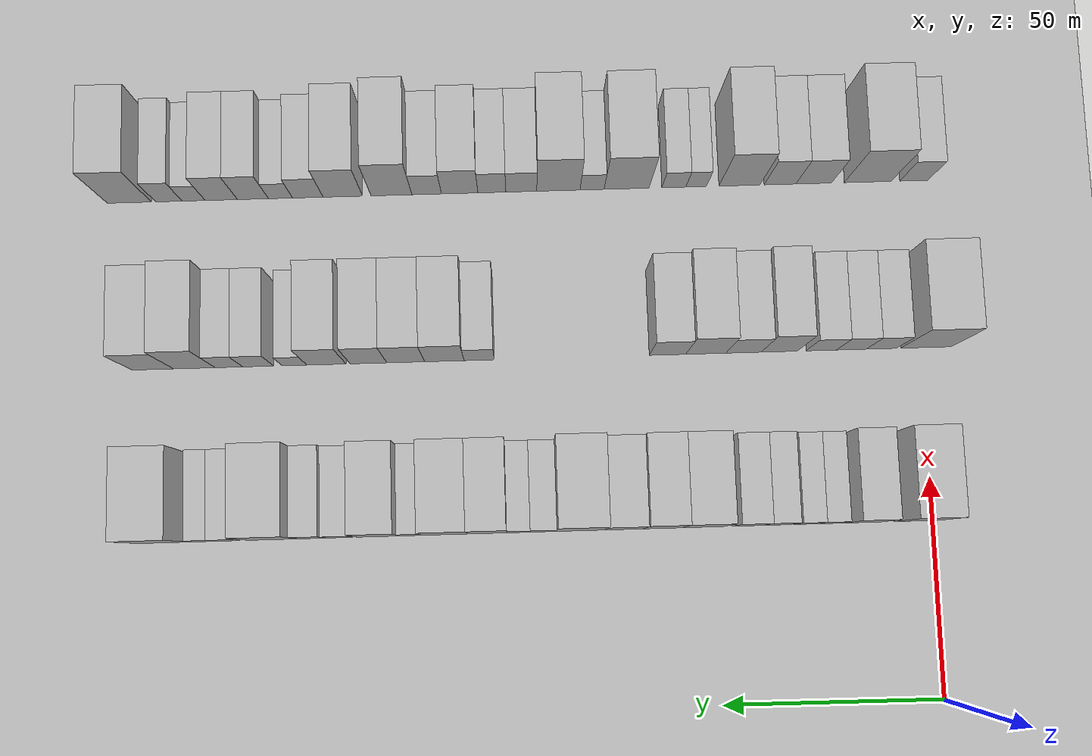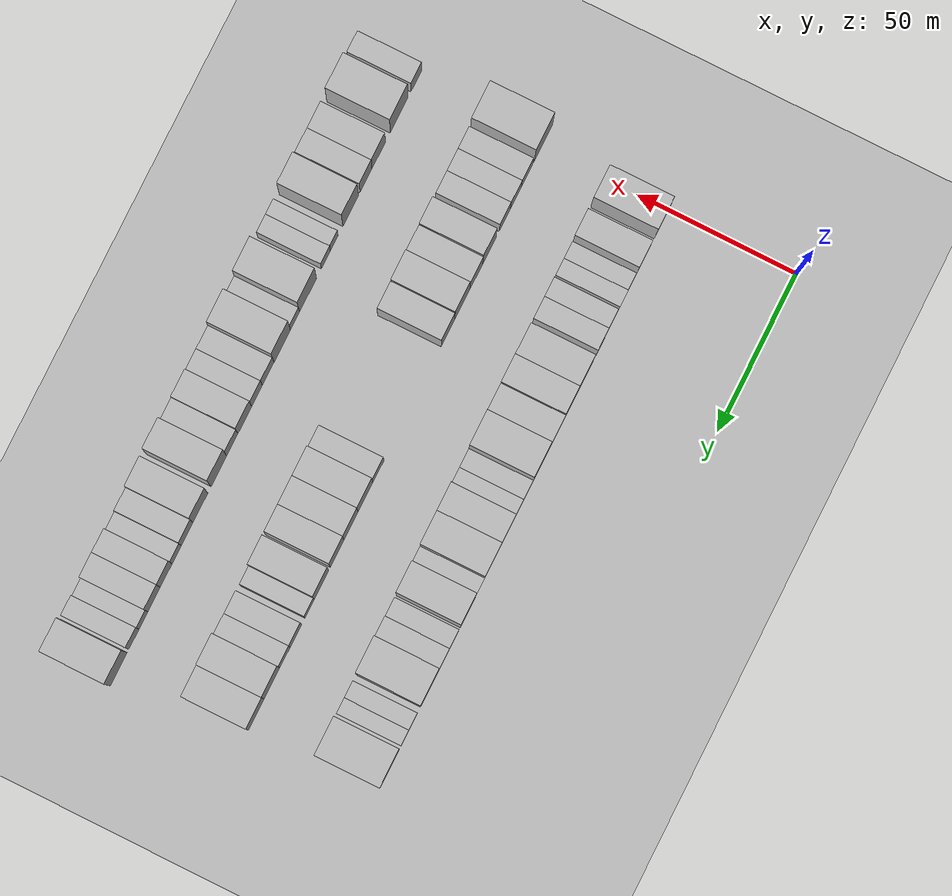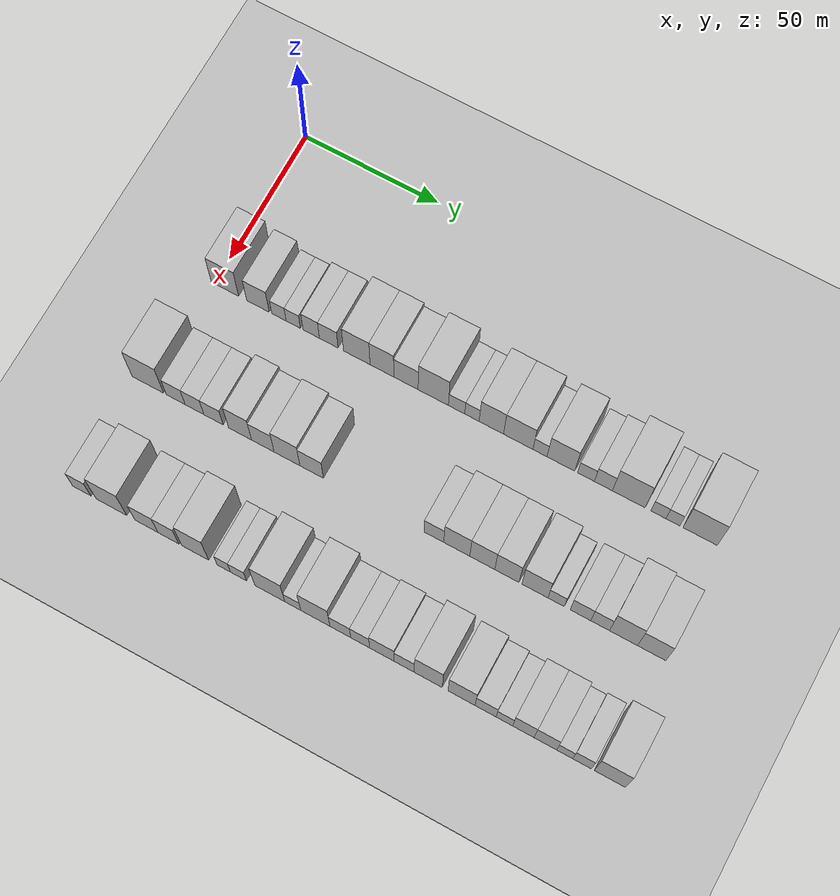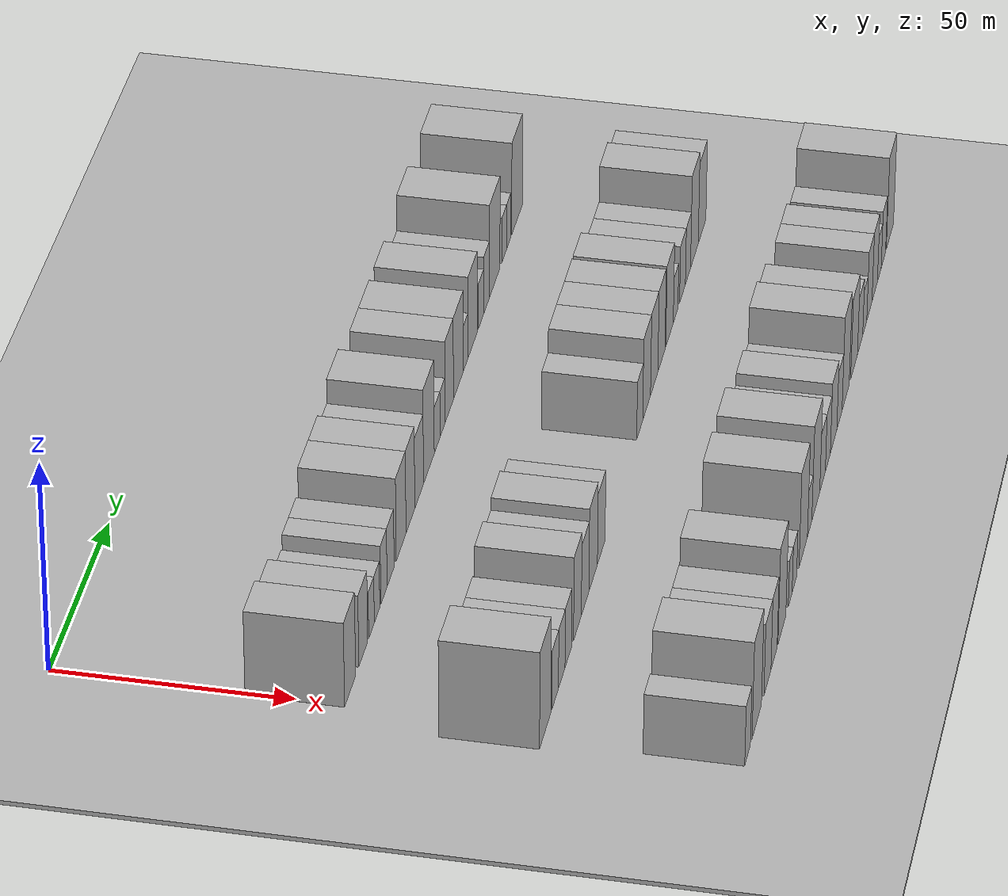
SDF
<sdf version="1.6">
 <world name="default">
  <include><name>ground_plane_1</name><uri>model://HANNAS_ground_plane</uri></include>
  <include>
   <name>ground_plane_2</name>
   <uri>model://HANNAS_ground_plane</uri>
   <pose>100 0 0  0 0 0</pose>
  </include>
  <model name="building_41">
   <static>1</static>
   <pose>50.0000 3.9553 0 0.000000 0.000000 0.000000</pose>
   <link name="link">
    <pose>0 0 10.50 0 0 0</pose>
    <collision name="collision"><geometry><box><size>20.0000 10.2650 21.0000</size></box></geometry></collision>
    <visual name="visual">
     <cast_shadows>0</cast_shadows>
     <geometry><box><size>20.0000 10.2650 21.0000</size></box></geometry>
     <material>
      <script>
       <uri>model://HANNAS_wall/materials/scripts</uri>
       <uri>model://HANNAS_wall/materials/textures</uri>
       <name>vrc/HANNAS_wall</name>
      </script>
     </material>
    </visual>
   </link>
  </model>
  <model name="building_42">
   <static>1</static>
   <pose>50.0000 16.2901 0 0.000000 0.000000 0.000000</pose>
   <link name="link">
    <pose>0 0 9.00 0 0 0</pose>
    <collision name="collision"><geometry><box><size>20.0000 8.4046 18.0000</size></box></geometry></collision>
    <visual name="visual">
     <cast_shadows>0</cast_shadows>
     <geometry><box><size>20.0000 8.4046 18.0000</size></box></geometry>
     <material>
      <script>
       <uri>model://HANNAS_wall/materials/scripts</uri>
       <uri>model://HANNAS_wall/materials/textures</uri>
       <name>vrc/HANNAS_wall</name>
      </script>
     </material>
    </visual>
   </link>
  </model>
  <model name="building_43">
   <static>1</static>
   <pose>50.0000 24.1484 0 0.000000 0.000000 0.000000</pose>
   <link name="link">
    <pose>0 0 6.00 0 0 0</pose>
    <collision name="collision"><geometry><box><size>20.0000 5.3120 12.0000</size></box></geometry></collision>
    <visual name="visual">
     <cast_shadows>0</cast_shadows>
     <geometry><box><size>20.0000 5.3120 12.0000</size></box></geometry>
     <material>
      <script>
       <uri>model://HANNAS_wall/materials/scripts</uri>
       <uri>model://HANNAS_wall/materials/textures</uri>
       <name>vrc/HANNAS_wall</name>
      </script>
     </material>
    </visual>
   </link>
  </model>
  <model name="building_44">
   <static>1</static>
   <pose>50.0000 29.4460 0 0.000000 0.000000 0.000000</pose>
   <link name="link">
    <pose>0 0 6.00 0 0 0</pose>
    <collision name="collision"><geometry><box><size>20.0000 5.2832 12.0000</size></box></geometry></collision>
    <visual name="visual">
     <cast_shadows>0</cast_shadows>
     <geometry><box><size>20.0000 5.2832 12.0000</size></box></geometry>
     <material>
      <script>
       <uri>model://HANNAS_wall/materials/scripts</uri>
       <uri>model://HANNAS_wall/materials/textures</uri>
       <name>vrc/HANNAS_wall</name>
      </script>
     </material>
    </visual>
   </link>
  </model>
  <model name="building_45">
   <static>1</static>
   <pose>50.0000 36.1066 0 0.000000 0.000000 0.000000</pose>
   <link name="link">
    <pose>0 0 7.50 0 0 0</pose>
    <collision name="collision"><geometry><box><size>20.0000 6.0381 15.0000</size></box></geometry></collision>
    <visual name="visual">
     <cast_shadows>0</cast_shadows>
     <geometry><box><size>20.0000 6.0381 15.0000</size></box></geometry>
     <material>
      <script>
       <uri>model://HANNAS_wall/materials/scripts</uri>
       <uri>model://HANNAS_wall/materials/textures</uri>
       <name>vrc/HANNAS_wall</name>
      </script>
     </material>
    </visual>
   </link>
  </model>
  <model name="building_46">
   <static>1</static>
   <pose>50.0000 42.5712 0 0.000000 0.000000 0.000000</pose>
   <link name="link">
    <pose>0 0 7.50 0 0 0</pose>
    <collision name="collision"><geometry><box><size>20.0000 6.8910 15.0000</size></box></geometry></collision>
    <visual name="visual">
     <cast_shadows>0</cast_shadows>
     <geometry><box><size>20.0000 6.8910 15.0000</size></box></geometry>
     <material>
      <script>
       <uri>model://HANNAS_wall/materials/scripts</uri>
       <uri>model://HANNAS_wall/materials/textures</uri>
       <name>vrc/HANNAS_wall</name>
      </script>
     </material>
    </visual>
   </link>
  </model>
  <model name="building_47">
   <static>1</static>
   <pose>50.0000 52.8749 0 0.000000 0.000000 0.000000</pose>
   <link name="link">
    <pose>0 0 10.50 0 0 0</pose>
    <collision name="collision"><geometry><box><size>20.0000 9.7164 21.0000</size></box></geometry></collision>
    <visual name="visual">
     <cast_shadows>0</cast_shadows>
     <geometry><box><size>20.0000 9.7164 21.0000</size></box></geometry>
     <material>
      <script>
       <uri>model://HANNAS_wall/materials/scripts</uri>
       <uri>model://HANNAS_wall/materials/textures</uri>
       <name>vrc/HANNAS_wall</name>
      </script>
     </material>
    </visual>
   </link>
  </model>
  <model name="building_48">
   <static>1</static>
   <pose>50.0000 62.1032 0 0.000000 0.000000 0.000000</pose>
   <link name="link">
    <pose>0 0 10.50 0 0 0</pose>
    <collision name="collision"><geometry><box><size>20.0000 8.7401 21.0000</size></box></geometry></collision>
    <visual name="visual">
     <cast_shadows>0</cast_shadows>
     <geometry><box><size>20.0000 8.7401 21.0000</size></box></geometry>
     <material>
      <script>
       <uri>model://HANNAS_wall/materials/scripts</uri>
       <uri>model://HANNAS_wall/materials/textures</uri>
       <name>vrc/HANNAS_wall</name>
      </script>
     </material>
    </visual>
   </link>
  </model>
  <model name="building_49">
   <static>1</static>
   <pose>50.0000 70.8600 0 0.000000 0.000000 0.000000</pose>
   <link name="link">
    <pose>0 0 9.00 0 0 0</pose>
    <collision name="collision"><geometry><box><size>20.0000 8.7737 18.0000</size></box></geometry></collision>
    <visual name="visual">
     <cast_shadows>0</cast_shadows>
     <geometry><box><size>20.0000 8.7737 18.0000</size></box></geometry>
     <material>
      <script>
       <uri>model://HANNAS_wall/materials/scripts</uri>
       <uri>model://HANNAS_wall/materials/textures</uri>
       <name>vrc/HANNAS_wall</name>
      </script>
     </material>
    </visual>
   </link>
  </model>
  <model name="building_50">
   <static>1</static>
   <pose>50.0000 80.7420 0 0.000000 0.000000 0.000000</pose>
   <link name="link">
    <pose>0 0 12.00 0 0 0</pose>
    <collision name="collision"><geometry><box><size>20.0000 10.9903 24.0000</size></box></geometry></collision>
    <visual name="visual">
     <cast_shadows>0</cast_shadows>
     <geometry><box><size>20.0000 10.9903 24.0000</size></box></geometry>
     <material>
      <script>
       <uri>model://HANNAS_wall/materials/scripts</uri>
       <uri>model://HANNAS_wall/materials/textures</uri>
       <name>vrc/HANNAS_wall</name>
      </script>
     </material>
    </visual>
   </link>
  </model>
  <model name="building_51">
   <static>1</static>
   <pose>50.0000 89.1865 0 0.000000 0.000000 0.000000</pose>
   <link name="link">
    <pose>0 0 6.00 0 0 0</pose>
    <collision name="collision"><geometry><box><size>20.0000 5.8988 12.0000</size></box></geometry></collision>
    <visual name="visual">
     <cast_shadows>0</cast_shadows>
     <geometry><box><size>20.0000 5.8988 12.0000</size></box></geometry>
     <material>
      <script>
       <uri>model://HANNAS_wall/materials/scripts</uri>
       <uri>model://HANNAS_wall/materials/textures</uri>
       <name>vrc/HANNAS_wall</name>
      </script>
     </material>
    </visual>
   </link>
  </model>
  <model name="building_52">
   <static>1</static>
   <pose>50.0000 94.7149 0 0.000000 0.000000 0.000000</pose>
   <link name="link">
    <pose>0 0 6.00 0 0 0</pose>
    <collision name="collision"><geometry><box><size>20.0000 5.1579 12.0000</size></box></geometry></collision>
    <visual name="visual">
     <cast_shadows>0</cast_shadows>
     <geometry><box><size>20.0000 5.1579 12.0000</size></box></geometry>
     <material>
      <script>
       <uri>model://HANNAS_wall/materials/scripts</uri>
       <uri>model://HANNAS_wall/materials/textures</uri>
       <name>vrc/HANNAS_wall</name>
      </script>
     </material>
    </visual>
   </link>
  </model>
  <model name="building_53">
   <static>1</static>
   <pose>50.0000 101.6818 0 0.000000 0.000000 0.000000</pose>
   <link name="link">
    <pose>0 0 10.50 0 0 0</pose>
    <collision name="collision"><geometry><box><size>20.0000 8.7760 21.0000</size></box></geometry></collision>
    <visual name="visual">
     <cast_shadows>0</cast_shadows>
     <geometry><box><size>20.0000 8.7760 21.0000</size></box></geometry>
     <material>
      <script>
       <uri>model://HANNAS_wall/materials/scripts</uri>
       <uri>model://HANNAS_wall/materials/textures</uri>
       <name>vrc/HANNAS_wall</name>
      </script>
     </material>
    </visual>
   </link>
  </model>
  <model name="building_54">
   <static>1</static>
   <pose>50.0000 111.2973 0 0.000000 0.000000 0.000000</pose>
   <link name="link">
    <pose>0 0 10.50 0 0 0</pose>
    <collision name="collision"><geometry><box><size>20.0000 10.4549 21.0000</size></box></geometry></collision>
    <visual name="visual">
     <cast_shadows>0</cast_shadows>
     <geometry><box><size>20.0000 10.4549 21.0000</size></box></geometry>
     <material>
      <script>
       <uri>model://HANNAS_wall/materials/scripts</uri>
       <uri>model://HANNAS_wall/materials/textures</uri>
       <name>vrc/HANNAS_wall</name>
      </script>
     </material>
    </visual>
   </link>
  </model>
  <model name="building_55">
   <static>1</static>
   <pose>50.0000 119.0371 0 0.000000 0.000000 0.000000</pose>
   <link name="link">
    <pose>0 0 6.00 0 0 0</pose>
    <collision name="collision"><geometry><box><size>20.0000 5.0247 12.0000</size></box></geometry></collision>
    <visual name="visual">
     <cast_shadows>0</cast_shadows>
     <geometry><box><size>20.0000 5.0247 12.0000</size></box></geometry>
     <material>
      <script>
       <uri>model://HANNAS_wall/materials/scripts</uri>
       <uri>model://HANNAS_wall/materials/textures</uri>
       <name>vrc/HANNAS_wall</name>
      </script>
     </material>
    </visual>
   </link>
  </model>
  <model name="building_56">
   <static>1</static>
   <pose>50.0000 126.4788 0 0.000000 0.000000 0.000000</pose>
   <link name="link">
    <pose>0 0 10.50 0 0 0</pose>
    <collision name="collision"><geometry><box><size>20.0000 9.8587 21.0000</size></box></geometry></collision>
    <visual name="visual">
     <cast_shadows>0</cast_shadows>
     <geometry><box><size>20.0000 9.8587 21.0000</size></box></geometry>
     <material>
      <script>
       <uri>model://HANNAS_wall/materials/scripts</uri>
       <uri>model://HANNAS_wall/materials/textures</uri>
       <name>vrc/HANNAS_wall</name>
      </script>
     </material>
    </visual>
   </link>
  </model>
  <model name="building_57">
   <static>1</static>
   <pose>50.0000 135.3654 0 0.000000 0.000000 0.000000</pose>
   <link name="link">
    <pose>0 0 6.00 0 0 0</pose>
    <collision name="collision"><geometry><box><size>20.0000 5.9146 12.0000</size></box></geometry></collision>
    <visual name="visual">
     <cast_shadows>0</cast_shadows>
     <geometry><box><size>20.0000 5.9146 12.0000</size></box></geometry>
     <material>
      <script>
       <uri>model://HANNAS_wall/materials/scripts</uri>
       <uri>model://HANNAS_wall/materials/textures</uri>
       <name>vrc/HANNAS_wall</name>
      </script>
     </material>
    </visual>
   </link>
  </model>
  <model name="building_58">
   <static>1</static>
   <pose>50.0000 141.5063 0 0.000000 0.000000 0.000000</pose>
   <link name="link">
    <pose>0 0 7.50 0 0 0</pose>
    <collision name="collision"><geometry><box><size>20.0000 6.3672 15.0000</size></box></geometry></collision>
    <visual name="visual">
     <cast_shadows>0</cast_shadows>
     <geometry><box><size>20.0000 6.3672 15.0000</size></box></geometry>
     <material>
      <script>
       <uri>model://HANNAS_wall/materials/scripts</uri>
       <uri>model://HANNAS_wall/materials/textures</uri>
       <name>vrc/HANNAS_wall</name>
      </script>
     </material>
    </visual>
   </link>
  </model>
  <model name="building_59">
   <static>1</static>
   <pose>50.0000 150.4168 0 0.000000 0.000000 0.000000</pose>
   <link name="link">
    <pose>0 0 12.00 0 0 0</pose>
    <collision name="collision"><geometry><box><size>20.0000 11.4538 24.0000</size></box></geometry></collision>
    <visual name="visual">
     <cast_shadows>0</cast_shadows>
     <geometry><box><size>20.0000 11.4538 24.0000</size></box></geometry>
     <material>
      <script>
       <uri>model://HANNAS_wall/materials/scripts</uri>
       <uri>model://HANNAS_wall/materials/textures</uri>
       <name>vrc/HANNAS_wall</name>
      </script>
     </material>
    </visual>
   </link>
  </model>
  <model name="building_60">
   <static>1</static>
   <pose>50.0000 160.7680 0 0.000000 0.000000 0.000000</pose>
   <link name="link">
    <pose>0 0 6.00 0 0 0</pose>
    <collision name="collision"><geometry><box><size>20.0000 5.2487 12.0000</size></box></geometry></collision>
    <visual name="visual">
     <cast_shadows>0</cast_shadows>
     <geometry><box><size>20.0000 5.2487 12.0000</size></box></geometry>
     <material>
      <script>
       <uri>model://HANNAS_wall/materials/scripts</uri>
       <uri>model://HANNAS_wall/materials/textures</uri>
       <name>vrc/HANNAS_wall</name>
      </script>
     </material>
    </visual>
   </link>
  </model>
  <model name="building_61">
   <static>1</static>
   <pose>50.0000 165.8168 0 0.000000 0.000000 0.000000</pose>
   <link name="link">
    <pose>0 0 6.00 0 0 0</pose>
    <collision name="collision"><geometry><box><size>20.0000 4.8489 12.0000</size></box></geometry></collision>
    <visual name="visual">
     <cast_shadows>0</cast_shadows>
     <geometry><box><size>20.0000 4.8489 12.0000</size></box></geometry>
     <material>
      <script>
       <uri>model://HANNAS_wall/materials/scripts</uri>
       <uri>model://HANNAS_wall/materials/textures</uri>
       <name>vrc/HANNAS_wall</name>
      </script>
     </material>
    </visual>
   </link>
  </model>
  <model name="building_62">
   <static>1</static>
   <pose>50.0000 175.2082 0 0.000000 0.000000 0.000000</pose>
   <link name="link">
    <pose>0 0 12.00 0 0 0</pose>
    <collision name="collision"><geometry><box><size>20.0000 11.9339 24.0000</size></box></geometry></collision>
    <visual name="visual">
     <cast_shadows>0</cast_shadows>
     <geometry><box><size>20.0000 11.9339 24.0000</size></box></geometry>
     <material>
      <script>
       <uri>model://HANNAS_wall/materials/scripts</uri>
       <uri>model://HANNAS_wall/materials/textures</uri>
       <name>vrc/HANNAS_wall</name>
      </script>
     </material>
    </visual>
   </link>
  </model>
  <model name="building_129">
   <static>1</static>
   <pose>90.0000 -1.0856 0 0.000000 0.000000 0.000000</pose>
   <link name="link">
    <pose>0 0 12.00 0 0 0</pose>
    <collision name="collision"><geometry><box><size>20.0000 11.7005 24.0000</size></box></geometry></collision>
    <visual name="visual">
     <cast_shadows>0</cast_shadows>
     <geometry><box><size>20.0000 11.7005 24.0000</size></box></geometry>
     <material>
      <script>
       <uri>model://HANNAS_wall/materials/scripts</uri>
       <uri>model://HANNAS_wall/materials/textures</uri>
       <name>vrc/HANNAS_wall</name>
      </script>
     </material>
    </visual>
   </link>
  </model>
  <model name="building_130">
   <static>1</static>
   <pose>90.0000 9.2709 0 0.000000 0.000000 0.000000</pose>
   <link name="link">
    <pose>0 0 7.50 0 0 0</pose>
    <collision name="collision"><geometry><box><size>20.0000 7.0125 15.0000</size></box></geometry></collision>
    <visual name="visual">
     <cast_shadows>0</cast_shadows>
     <geometry><box><size>20.0000 7.0125 15.0000</size></box></geometry>
     <material>
      <script>
       <uri>model://HANNAS_wall/materials/scripts</uri>
       <uri>model://HANNAS_wall/materials/textures</uri>
       <name>vrc/HANNAS_wall</name>
      </script>
     </material>
    </visual>
   </link>
  </model>
  <model name="building_131">
   <static>1</static>
   <pose>90.0000 16.2237 0 0.000000 0.000000 0.000000</pose>
   <link name="link">
    <pose>0 0 7.50 0 0 0</pose>
    <collision name="collision"><geometry><box><size>20.0000 6.8932 15.0000</size></box></geometry></collision>
    <visual name="visual">
     <cast_shadows>0</cast_shadows>
     <geometry><box><size>20.0000 6.8932 15.0000</size></box></geometry>
     <material>
      <script>
       <uri>model://HANNAS_wall/materials/scripts</uri>
       <uri>model://HANNAS_wall/materials/textures</uri>
       <name>vrc/HANNAS_wall</name>
      </script>
     </material>
    </visual>
   </link>
  </model>
  <model name="building_132">
   <static>1</static>
   <pose>90.0000 23.2093 0 0.000000 0.000000 0.000000</pose>
   <link name="link">
    <pose>0 0 7.50 0 0 0</pose>
    <collision name="collision"><geometry><box><size>20.0000 7.0781 15.0000</size></box></geometry></collision>
    <visual name="visual">
     <cast_shadows>0</cast_shadows>
     <geometry><box><size>20.0000 7.0781 15.0000</size></box></geometry>
     <material>
      <script>
       <uri>model://HANNAS_wall/materials/scripts</uri>
       <uri>model://HANNAS_wall/materials/textures</uri>
       <name>vrc/HANNAS_wall</name>
      </script>
     </material>
    </visual>
   </link>
  </model>
  <model name="building_133">
   <static>1</static>
   <pose>90.0000 32.9680 0 0.000000 0.000000 0.000000</pose>
   <link name="link">
    <pose>0 0 10.50 0 0 0</pose>
    <collision name="collision"><geometry><box><size>20.0000 8.4394 21.0000</size></box></geometry></collision>
    <visual name="visual">
     <cast_shadows>0</cast_shadows>
     <geometry><box><size>20.0000 8.4394 21.0000</size></box></geometry>
     <material>
      <script>
       <uri>model://HANNAS_wall/materials/scripts</uri>
       <uri>model://HANNAS_wall/materials/textures</uri>
       <name>vrc/HANNAS_wall</name>
      </script>
     </material>
    </visual>
   </link>
  </model>
  <model name="building_134">
   <static>1</static>
   <pose>90.0000 41.2858 0 0.000000 0.000000 0.000000</pose>
   <link name="link">
    <pose>0 0 9.00 0 0 0</pose>
    <collision name="collision"><geometry><box><size>20.0000 8.1962 18.0000</size></box></geometry></collision>
    <visual name="visual">
     <cast_shadows>0</cast_shadows>
     <geometry><box><size>20.0000 8.1962 18.0000</size></box></geometry>
     <material>
      <script>
       <uri>model://HANNAS_wall/materials/scripts</uri>
       <uri>model://HANNAS_wall/materials/textures</uri>
       <name>vrc/HANNAS_wall</name>
      </script>
     </material>
    </visual>
   </link>
  </model>
  <model name="building_135">
   <static>1</static>
   <pose>90.0000 50.0693 0 0.000000 0.000000 0.000000</pose>
   <link name="link">
    <pose>0 0 10.50 0 0 0</pose>
    <collision name="collision"><geometry><box><size>20.0000 9.3708 21.0000</size></box></geometry></collision>
    <visual name="visual">
     <cast_shadows>0</cast_shadows>
     <geometry><box><size>20.0000 9.3708 21.0000</size></box></geometry>
     <material>
      <script>
       <uri>model://HANNAS_wall/materials/scripts</uri>
       <uri>model://HANNAS_wall/materials/textures</uri>
       <name>vrc/HANNAS_wall</name>
      </script>
     </material>
    </visual>
   </link>
  </model>
  <model name="building_136">
   <static>1</static>
   <pose>90.0000 59.0007 0 0.000000 0.000000 0.000000</pose>
   <link name="link">
    <pose>0 0 9.00 0 0 0</pose>
    <collision name="collision"><geometry><box><size>20.0000 8.4918 18.0000</size></box></geometry></collision>
    <visual name="visual">
     <cast_shadows>0</cast_shadows>
     <geometry><box><size>20.0000 8.4918 18.0000</size></box></geometry>
     <material>
      <script>
       <uri>model://HANNAS_wall/materials/scripts</uri>
       <uri>model://HANNAS_wall/materials/textures</uri>
       <name>vrc/HANNAS_wall</name>
      </script>
     </material>
    </visual>
   </link>
  </model>
  <model name="building_137">
   <static>1</static>
   <pose>90.0000 102.7180 0 0.000000 0.000000 0.000000</pose>
   <link name="link">
    <pose>0 0 7.50 0 0 0</pose>
    <collision name="collision"><geometry><box><size>20.0000 6.9810 15.0000</size></box></geometry></collision>
    <visual name="visual">
     <cast_shadows>0</cast_shadows>
     <geometry><box><size>20.0000 6.9810 15.0000</size></box></geometry>
     <material>
      <script>
       <uri>model://HANNAS_wall/materials/scripts</uri>
       <uri>model://HANNAS_wall/materials/textures</uri>
       <name>vrc/HANNAS_wall</name>
      </script>
     </material>
    </visual>
   </link>
  </model>
  <model name="building_138">
   <static>1</static>
   <pose>90.0000 110.7903 0 0.000000 0.000000 0.000000</pose>
   <link name="link">
    <pose>0 0 10.50 0 0 0</pose>
    <collision name="collision"><geometry><box><size>20.0000 9.1635 21.0000</size></box></geometry></collision>
    <visual name="visual">
     <cast_shadows>0</cast_shadows>
     <geometry><box><size>20.0000 9.1635 21.0000</size></box></geometry>
     <material>
      <script>
       <uri>model://HANNAS_wall/materials/scripts</uri>
       <uri>model://HANNAS_wall/materials/textures</uri>
       <name>vrc/HANNAS_wall</name>
      </script>
     </material>
    </visual>
   </link>
  </model>
  <model name="building_139">
   <static>1</static>
   <pose>90.0000 119.7549 0 0.000000 0.000000 0.000000</pose>
   <link name="link">
    <pose>0 0 10.50 0 0 0</pose>
    <collision name="collision"><geometry><box><size>20.0000 8.7659 21.0000</size></box></geometry></collision>
    <visual name="visual">
     <cast_shadows>0</cast_shadows>
     <geometry><box><size>20.0000 8.7659 21.0000</size></box></geometry>
     <material>
      <script>
       <uri>model://HANNAS_wall/materials/scripts</uri>
       <uri>model://HANNAS_wall/materials/textures</uri>
       <name>vrc/HANNAS_wall</name>
      </script>
     </material>
    </visual>
   </link>
  </model>
  <model name="building_140">
   <static>1</static>
   <pose>90.0000 128.3804 0 0.000000 0.000000 0.000000</pose>
   <link name="link">
    <pose>0 0 10.50 0 0 0</pose>
    <collision name="collision"><geometry><box><size>20.0000 8.4851 21.0000</size></box></geometry></collision>
    <visual name="visual">
     <cast_shadows>0</cast_shadows>
     <geometry><box><size>20.0000 8.4851 21.0000</size></box></geometry>
     <material>
      <script>
       <uri>model://HANNAS_wall/materials/scripts</uri>
       <uri>model://HANNAS_wall/materials/textures</uri>
       <name>vrc/HANNAS_wall</name>
      </script>
     </material>
    </visual>
   </link>
  </model>
  <model name="building_141">
   <static>1</static>
   <pose>90.0000 138.1575 0 0.000000 0.000000 0.000000</pose>
   <link name="link">
    <pose>0 0 10.50 0 0 0</pose>
    <collision name="collision"><geometry><box><size>20.0000 9.0691 21.0000</size></box></geometry></collision>
    <visual name="visual">
     <cast_shadows>0</cast_shadows>
     <geometry><box><size>20.0000 9.0691 21.0000</size></box></geometry>
     <material>
      <script>
       <uri>model://HANNAS_wall/materials/scripts</uri>
       <uri>model://HANNAS_wall/materials/textures</uri>
       <name>vrc/HANNAS_wall</name>
      </script>
     </material>
    </visual>
   </link>
  </model>
  <model name="building_142">
   <static>1</static>
   <pose>90.0000 145.5469 0 0.000000 0.000000 0.000000</pose>
   <link name="link">
    <pose>0 0 6.00 0 0 0</pose>
    <collision name="collision"><geometry><box><size>20.0000 5.7098 12.0000</size></box></geometry></collision>
    <visual name="visual">
     <cast_shadows>0</cast_shadows>
     <geometry><box><size>20.0000 5.7098 12.0000</size></box></geometry>
     <material>
      <script>
       <uri>model://HANNAS_wall/materials/scripts</uri>
       <uri>model://HANNAS_wall/materials/textures</uri>
       <name>vrc/HANNAS_wall</name>
      </script>
     </material>
    </visual>
   </link>
  </model>
  <model name="building_143">
   <static>1</static>
   <pose>90.0000 153.9674 0 0.000000 0.000000 0.000000</pose>
   <link name="link">
    <pose>0 0 7.50 0 0 0</pose>
    <collision name="collision"><geometry><box><size>20.0000 7.1311 15.0000</size></box></geometry></collision>
    <visual name="visual">
     <cast_shadows>0</cast_shadows>
     <geometry><box><size>20.0000 7.1311 15.0000</size></box></geometry>
     <material>
      <script>
       <uri>model://HANNAS_wall/materials/scripts</uri>
       <uri>model://HANNAS_wall/materials/textures</uri>
       <name>vrc/HANNAS_wall</name>
      </script>
     </material>
    </visual>
   </link>
  </model>
  <model name="building_144">
   <static>1</static>
   <pose>90.0000 160.7519 0 0.000000 0.000000 0.000000</pose>
   <link name="link">
    <pose>0 0 7.50 0 0 0</pose>
    <collision name="collision"><geometry><box><size>20.0000 6.4380 15.0000</size></box></geometry></collision>
    <visual name="visual">
     <cast_shadows>0</cast_shadows>
     <geometry><box><size>20.0000 6.4380 15.0000</size></box></geometry>
     <material>
      <script>
       <uri>model://HANNAS_wall/materials/scripts</uri>
       <uri>model://HANNAS_wall/materials/textures</uri>
       <name>vrc/HANNAS_wall</name>
      </script>
     </material>
    </visual>
   </link>
  </model>
  <model name="building_145">
   <static>1</static>
   <pose>90.0000 168.7760 0 0.000000 0.000000 0.000000</pose>
   <link name="link">
    <pose>0 0 12.00 0 0 0</pose>
    <collision name="collision"><geometry><box><size>20.0000 9.6100 24.0000</size></box></geometry></collision>
    <visual name="visual">
     <cast_shadows>0</cast_shadows>
     <geometry><box><size>20.0000 9.6100 24.0000</size></box></geometry>
     <material>
      <script>
       <uri>model://HANNAS_wall/materials/scripts</uri>
       <uri>model://HANNAS_wall/materials/textures</uri>
       <name>vrc/HANNAS_wall</name>
      </script>
     </material>
    </visual>
   </link>
  </model>
  <model name="building_146">
   <static>1</static>
   <pose>90.0000 178.4078 0 0.000000 0.000000 0.000000</pose>
   <link name="link">
    <pose>0 0 10.50 0 0 0</pose>
    <collision name="collision"><geometry><box><size>20.0000 9.6537 21.0000</size></box></geometry></collision>
    <visual name="visual">
     <cast_shadows>0</cast_shadows>
     <geometry><box><size>20.0000 9.6537 21.0000</size></box></geometry>
     <material>
      <script>
       <uri>model://HANNAS_wall/materials/scripts</uri>
       <uri>model://HANNAS_wall/materials/textures</uri>
       <name>vrc/HANNAS_wall</name>
      </script>
     </material>
    </visual>
   </link>
  </model>
  <model name="building_211">
   <static>1</static>
   <pose>130.0000 -1.0728 0 0.000000 0.000000 0.000000</pose>
   <link name="link">
    <pose>0 0 7.50 0 0 0</pose>
    <collision name="collision"><geometry><box><size>20.0000 6.6781 15.0000</size></box></geometry></collision>
    <visual name="visual">
     <cast_shadows>0</cast_shadows>
     <geometry><box><size>20.0000 6.6781 15.0000</size></box></geometry>
     <material>
      <script>
       <uri>model://HANNAS_wall/materials/scripts</uri>
       <uri>model://HANNAS_wall/materials/textures</uri>
       <name>vrc/HANNAS_wall</name>
      </script>
     </material>
    </visual>
   </link>
  </model>
  <model name="building_212">
   <static>1</static>
   <pose>130.0000 9.8309 0 0.000000 0.000000 0.000000</pose>
   <link name="link">
    <pose>0 0 12.00 0 0 0</pose>
    <collision name="collision"><geometry><box><size>20.0000 11.1295 24.0000</size></box></geometry></collision>
    <visual name="visual">
     <cast_shadows>0</cast_shadows>
     <geometry><box><size>20.0000 11.1295 24.0000</size></box></geometry>
     <material>
      <script>
       <uri>model://HANNAS_wall/materials/scripts</uri>
       <uri>model://HANNAS_wall/materials/textures</uri>
       <name>vrc/HANNAS_wall</name>
      </script>
     </material>
    </visual>
   </link>
  </model>
  <model name="building_213">
   <static>1</static>
   <pose>130.0000 22.6151 0 0.000000 0.000000 0.000000</pose>
   <link name="link">
    <pose>0 0 9.00 0 0 0</pose>
    <collision name="collision"><geometry><box><size>20.0000 8.4390 18.0000</size></box></geometry></collision>
    <visual name="visual">
     <cast_shadows>0</cast_shadows>
     <geometry><box><size>20.0000 8.4390 18.0000</size></box></geometry>
     <material>
      <script>
       <uri>model://HANNAS_wall/materials/scripts</uri>
       <uri>model://HANNAS_wall/materials/textures</uri>
       <name>vrc/HANNAS_wall</name>
      </script>
     </material>
    </visual>
   </link>
  </model>
  <model name="building_214">
   <static>1</static>
   <pose>130.0000 30.6043 0 0.000000 0.000000 0.000000</pose>
   <link name="link">
    <pose>0 0 9.00 0 0 0</pose>
    <collision name="collision"><geometry><box><size>20.0000 7.5394 18.0000</size></box></geometry></collision>
    <visual name="visual">
     <cast_shadows>0</cast_shadows>
     <geometry><box><size>20.0000 7.5394 18.0000</size></box></geometry>
     <material>
      <script>
       <uri>model://HANNAS_wall/materials/scripts</uri>
       <uri>model://HANNAS_wall/materials/textures</uri>
       <name>vrc/HANNAS_wall</name>
      </script>
     </material>
    </visual>
   </link>
  </model>
  <model name="building_215">
   <static>1</static>
   <pose>130.0000 40.2288 0 0.000000 0.000000 0.000000</pose>
   <link name="link">
    <pose>0 0 12.00 0 0 0</pose>
    <collision name="collision"><geometry><box><size>20.0000 9.7095 24.0000</size></box></geometry></collision>
    <visual name="visual">
     <cast_shadows>0</cast_shadows>
     <geometry><box><size>20.0000 9.7095 24.0000</size></box></geometry>
     <material>
      <script>
       <uri>model://HANNAS_wall/materials/scripts</uri>
       <uri>model://HANNAS_wall/materials/textures</uri>
       <name>vrc/HANNAS_wall</name>
      </script>
     </material>
    </visual>
   </link>
  </model>
  <model name="building_216">
   <static>1</static>
   <pose>130.0000 50.4968 0 0.000000 0.000000 0.000000</pose>
   <link name="link">
    <pose>0 0 6.00 0 0 0</pose>
    <collision name="collision"><geometry><box><size>20.0000 4.8265 12.0000</size></box></geometry></collision>
    <visual name="visual">
     <cast_shadows>0</cast_shadows>
     <geometry><box><size>20.0000 4.8265 12.0000</size></box></geometry>
     <material>
      <script>
       <uri>model://HANNAS_wall/materials/scripts</uri>
       <uri>model://HANNAS_wall/materials/textures</uri>
       <name>vrc/HANNAS_wall</name>
      </script>
     </material>
    </visual>
   </link>
  </model>
  <model name="building_217">
   <static>1</static>
   <pose>130.0000 55.7546 0 0.000000 0.000000 0.000000</pose>
   <link name="link">
    <pose>0 0 6.00 0 0 0</pose>
    <collision name="collision"><geometry><box><size>20.0000 5.6892 12.0000</size></box></geometry></collision>
    <visual name="visual">
     <cast_shadows>0</cast_shadows>
     <geometry><box><size>20.0000 5.6892 12.0000</size></box></geometry>
     <material>
      <script>
       <uri>model://HANNAS_wall/materials/scripts</uri>
       <uri>model://HANNAS_wall/materials/textures</uri>
       <name>vrc/HANNAS_wall</name>
      </script>
     </material>
    </visual>
   </link>
  </model>
  <model name="building_218">
   <static>1</static>
   <pose>130.0000 66.9348 0 0.000000 0.000000 0.000000</pose>
   <link name="link">
    <pose>0 0 12.00 0 0 0</pose>
    <collision name="collision"><geometry><box><size>20.0000 10.6712 24.0000</size></box></geometry></collision>
    <visual name="visual">
     <cast_shadows>0</cast_shadows>
     <geometry><box><size>20.0000 10.6712 24.0000</size></box></geometry>
     <material>
      <script>
       <uri>model://HANNAS_wall/materials/scripts</uri>
       <uri>model://HANNAS_wall/materials/textures</uri>
       <name>vrc/HANNAS_wall</name>
      </script>
     </material>
    </visual>
   </link>
  </model>
  <model name="building_219">
   <static>1</static>
   <pose>130.0000 75.1097 0 0.000000 0.000000 0.000000</pose>
   <link name="link">
    <pose>0 0 6.00 0 0 0</pose>
    <collision name="collision"><geometry><box><size>20.0000 5.6786 12.0000</size></box></geometry></collision>
    <visual name="visual">
     <cast_shadows>0</cast_shadows>
     <geometry><box><size>20.0000 5.6786 12.0000</size></box></geometry>
     <material>
      <script>
       <uri>model://HANNAS_wall/materials/scripts</uri>
       <uri>model://HANNAS_wall/materials/textures</uri>
       <name>vrc/HANNAS_wall</name>
      </script>
     </material>
    </visual>
   </link>
  </model>
  <model name="building_220">
   <static>1</static>
   <pose>130.0000 83.0713 0 0.000000 0.000000 0.000000</pose>
   <link name="link">
    <pose>0 0 12.00 0 0 0</pose>
    <collision name="collision"><geometry><box><size>20.0000 10.2447 24.0000</size></box></geometry></collision>
    <visual name="visual">
     <cast_shadows>0</cast_shadows>
     <geometry><box><size>20.0000 10.2447 24.0000</size></box></geometry>
     <material>
      <script>
       <uri>model://HANNAS_wall/materials/scripts</uri>
       <uri>model://HANNAS_wall/materials/textures</uri>
       <name>vrc/HANNAS_wall</name>
      </script>
     </material>
    </visual>
   </link>
  </model>
  <model name="building_221">
   <static>1</static>
   <pose>130.0000 91.8326 0 0.000000 0.000000 0.000000</pose>
   <link name="link">
    <pose>0 0 7.50 0 0 0</pose>
    <collision name="collision"><geometry><box><size>20.0000 7.2779 15.0000</size></box></geometry></collision>
    <visual name="visual">
     <cast_shadows>0</cast_shadows>
     <geometry><box><size>20.0000 7.2779 15.0000</size></box></geometry>
     <material>
      <script>
       <uri>model://HANNAS_wall/materials/scripts</uri>
       <uri>model://HANNAS_wall/materials/textures</uri>
       <name>vrc/HANNAS_wall</name>
      </script>
     </material>
    </visual>
   </link>
  </model>
  <model name="building_222">
   <static>1</static>
   <pose>130.0000 98.7794 0 0.000000 0.000000 0.000000</pose>
   <link name="link">
    <pose>0 0 7.50 0 0 0</pose>
    <collision name="collision"><geometry><box><size>20.0000 6.6157 15.0000</size></box></geometry></collision>
    <visual name="visual">
     <cast_shadows>0</cast_shadows>
     <geometry><box><size>20.0000 6.6157 15.0000</size></box></geometry>
     <material>
      <script>
       <uri>model://HANNAS_wall/materials/scripts</uri>
       <uri>model://HANNAS_wall/materials/textures</uri>
       <name>vrc/HANNAS_wall</name>
      </script>
     </material>
    </visual>
   </link>
  </model>
  <model name="building_223">
   <static>1</static>
   <pose>130.0000 106.3874 0 0.000000 0.000000 0.000000</pose>
   <link name="link">
    <pose>0 0 9.00 0 0 0</pose>
    <collision name="collision"><geometry><box><size>20.0000 8.6001 18.0000</size></box></geometry></collision>
    <visual name="visual">
     <cast_shadows>0</cast_shadows>
     <geometry><box><size>20.0000 8.6001 18.0000</size></box></geometry>
     <material>
      <script>
       <uri>model://HANNAS_wall/materials/scripts</uri>
       <uri>model://HANNAS_wall/materials/textures</uri>
       <name>vrc/HANNAS_wall</name>
      </script>
     </material>
    </visual>
   </link>
  </model>
  <model name="building_224">
   <static>1</static>
   <pose>130.0000 114.1781 0 0.000000 0.000000 0.000000</pose>
   <link name="link">
    <pose>0 0 7.50 0 0 0</pose>
    <collision name="collision"><geometry><box><size>20.0000 6.9813 15.0000</size></box></geometry></collision>
    <visual name="visual">
     <cast_shadows>0</cast_shadows>
     <geometry><box><size>20.0000 6.9813 15.0000</size></box></geometry>
     <material>
      <script>
       <uri>model://HANNAS_wall/materials/scripts</uri>
       <uri>model://HANNAS_wall/materials/textures</uri>
       <name>vrc/HANNAS_wall</name>
      </script>
     </material>
    </visual>
   </link>
  </model>
  <model name="building_225">
   <static>1</static>
   <pose>130.0000 122.4893 0 0.000000 0.000000 0.000000</pose>
   <link name="link">
    <pose>0 0 12.00 0 0 0</pose>
    <collision name="collision"><geometry><box><size>20.0000 9.6410 24.0000</size></box></geometry></collision>
    <visual name="visual">
     <cast_shadows>0</cast_shadows>
     <geometry><box><size>20.0000 9.6410 24.0000</size></box></geometry>
     <material>
      <script>
       <uri>model://HANNAS_wall/materials/scripts</uri>
       <uri>model://HANNAS_wall/materials/textures</uri>
       <name>vrc/HANNAS_wall</name>
      </script>
     </material>
    </visual>
   </link>
  </model>
  <model name="building_226">
   <static>1</static>
   <pose>130.0000 133.9628 0 0.000000 0.000000 0.000000</pose>
   <link name="link">
    <pose>0 0 10.50 0 0 0</pose>
    <collision name="collision"><geometry><box><size>20.0000 9.3060 21.0000</size></box></geometry></collision>
    <visual name="visual">
     <cast_shadows>0</cast_shadows>
     <geometry><box><size>20.0000 9.3060 21.0000</size></box></geometry>
     <material>
      <script>
       <uri>model://HANNAS_wall/materials/scripts</uri>
       <uri>model://HANNAS_wall/materials/textures</uri>
       <name>vrc/HANNAS_wall</name>
      </script>
     </material>
    </visual>
   </link>
  </model>
  <model name="building_227">
   <static>1</static>
   <pose>130.0000 142.2265 0 0.000000 0.000000 0.000000</pose>
   <link name="link">
    <pose>0 0 7.50 0 0 0</pose>
    <collision name="collision"><geometry><box><size>20.0000 7.2214 15.0000</size></box></geometry></collision>
    <visual name="visual">
     <cast_shadows>0</cast_shadows>
     <geometry><box><size>20.0000 7.2214 15.0000</size></box></geometry>
     <material>
      <script>
       <uri>model://HANNAS_wall/materials/scripts</uri>
       <uri>model://HANNAS_wall/materials/textures</uri>
       <name>vrc/HANNAS_wall</name>
      </script>
     </material>
    </visual>
   </link>
  </model>
  <model name="building_228">
   <static>1</static>
   <pose>130.0000 148.6693 0 0.000000 0.000000 0.000000</pose>
   <link name="link">
    <pose>0 0 6.00 0 0 0</pose>
    <collision name="collision"><geometry><box><size>20.0000 5.6643 12.0000</size></box></geometry></collision>
    <visual name="visual">
     <cast_shadows>0</cast_shadows>
     <geometry><box><size>20.0000 5.6643 12.0000</size></box></geometry>
     <material>
      <script>
       <uri>model://HANNAS_wall/materials/scripts</uri>
       <uri>model://HANNAS_wall/materials/textures</uri>
       <name>vrc/HANNAS_wall</name>
      </script>
     </material>
    </visual>
   </link>
  </model>
  <model name="building_229">
   <static>1</static>
   <pose>130.0000 155.1599 0 0.000000 0.000000 0.000000</pose>
   <link name="link">
    <pose>0 0 9.00 0 0 0</pose>
    <collision name="collision"><geometry><box><size>20.0000 7.3169 18.0000</size></box></geometry></collision>
    <visual name="visual">
     <cast_shadows>0</cast_shadows>
     <geometry><box><size>20.0000 7.3169 18.0000</size></box></geometry>
     <material>
      <script>
       <uri>model://HANNAS_wall/materials/scripts</uri>
       <uri>model://HANNAS_wall/materials/textures</uri>
       <name>vrc/HANNAS_wall</name>
      </script>
     </material>
    </visual>
   </link>
  </model>
  <model name="building_230">
   <static>1</static>
   <pose>130.0000 162.6406 0 0.000000 0.000000 0.000000</pose>
   <link name="link">
    <pose>0 0 9.00 0 0 0</pose>
    <collision name="collision"><geometry><box><size>20.0000 7.6445 18.0000</size></box></geometry></collision>
    <visual name="visual">
     <cast_shadows>0</cast_shadows>
     <geometry><box><size>20.0000 7.6445 18.0000</size></box></geometry>
     <material>
      <script>
       <uri>model://HANNAS_wall/materials/scripts</uri>
       <uri>model://HANNAS_wall/materials/textures</uri>
       <name>vrc/HANNAS_wall</name>
      </script>
     </material>
    </visual>
   </link>
  </model>
  <model name="building_231">
   <static>1</static>
   <pose>130.0000 169.1691 0 0.000000 0.000000 0.000000</pose>
   <link name="link">
    <pose>0 0 6.00 0 0 0</pose>
    <collision name="collision"><geometry><box><size>20.0000 5.4124 12.0000</size></box></geometry></collision>
    <visual name="visual">
     <cast_shadows>0</cast_shadows>
     <geometry><box><size>20.0000 5.4124 12.0000</size></box></geometry>
     <material>
      <script>
       <uri>model://HANNAS_wall/materials/scripts</uri>
       <uri>model://HANNAS_wall/materials/textures</uri>
       <name>vrc/HANNAS_wall</name>
      </script>
     </material>
    </visual>
   </link>
  </model>
  <model name="building_232">
   <static>1</static>
   <pose>130.0000 175.0134 0 0.000000 0.000000 0.000000</pose>
   <link name="link">
    <pose>0 0 7.50 0 0 0</pose>
    <collision name="collision"><geometry><box><size>20.0000 6.2762 15.0000</size></box></geometry></collision>
    <visual name="visual">
     <cast_shadows>0</cast_shadows>
     <geometry><box><size>20.0000 6.2762 15.0000</size></box></geometry>
     <material>
      <script>
       <uri>model://HANNAS_wall/materials/scripts</uri>
       <uri>model://HANNAS_wall/materials/textures</uri>
       <name>vrc/HANNAS_wall</name>
      </script>
     </material>
    </visual>
   </link>
  </model>
  <model name="building_233">
   <static>1</static>
   <pose>130.0000 184.3452 0 0.000000 0.000000 0.000000</pose>
   <link name="link">
    <pose>0 0 12.00 0 0 0</pose>
    <collision name="collision"><geometry><box><size>20.0000 10.3873 24.0000</size></box></geometry></collision>
    <visual name="visual">
     <cast_shadows>0</cast_shadows>
     <geometry><box><size>20.0000 10.3873 24.0000</size></box></geometry>
     <material>
      <script>
       <uri>model://HANNAS_wall/materials/scripts</uri>
       <uri>model://HANNAS_wall/materials/textures</uri>
       <name>vrc/HANNAS_wall</name>
      </script>
     </material>
    </visual>
   </link>
  </model>
 </world>
</sdf>
